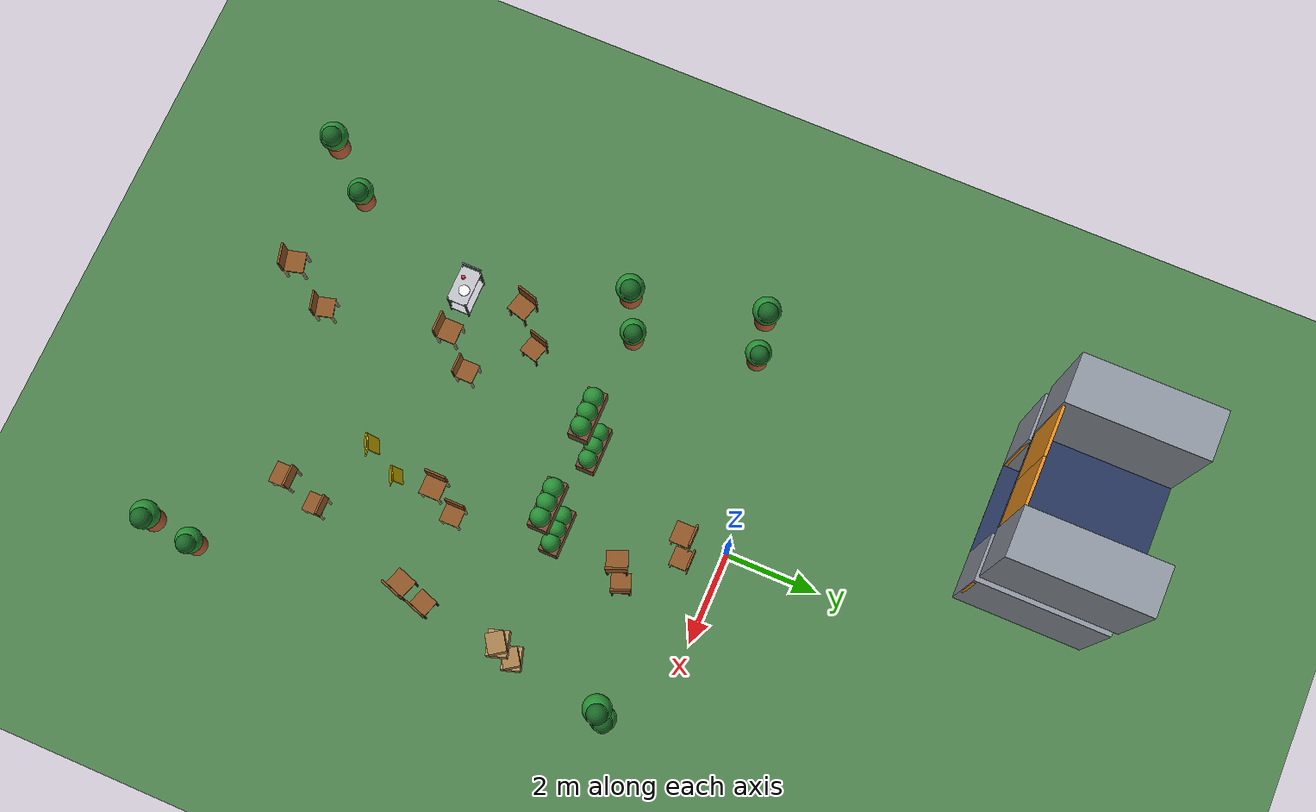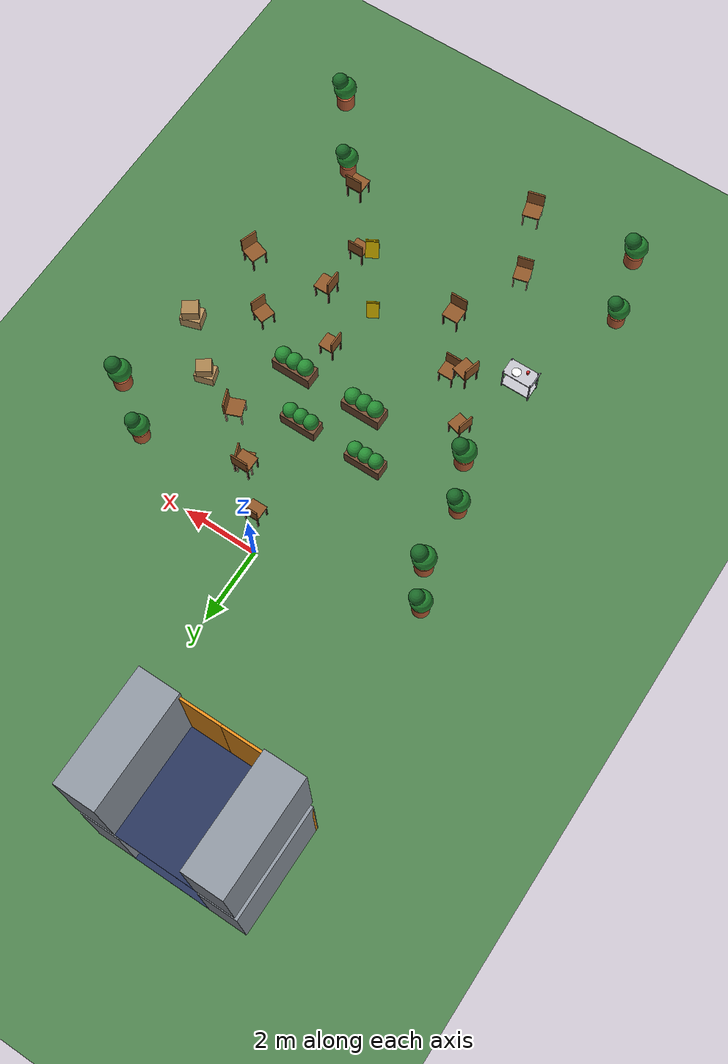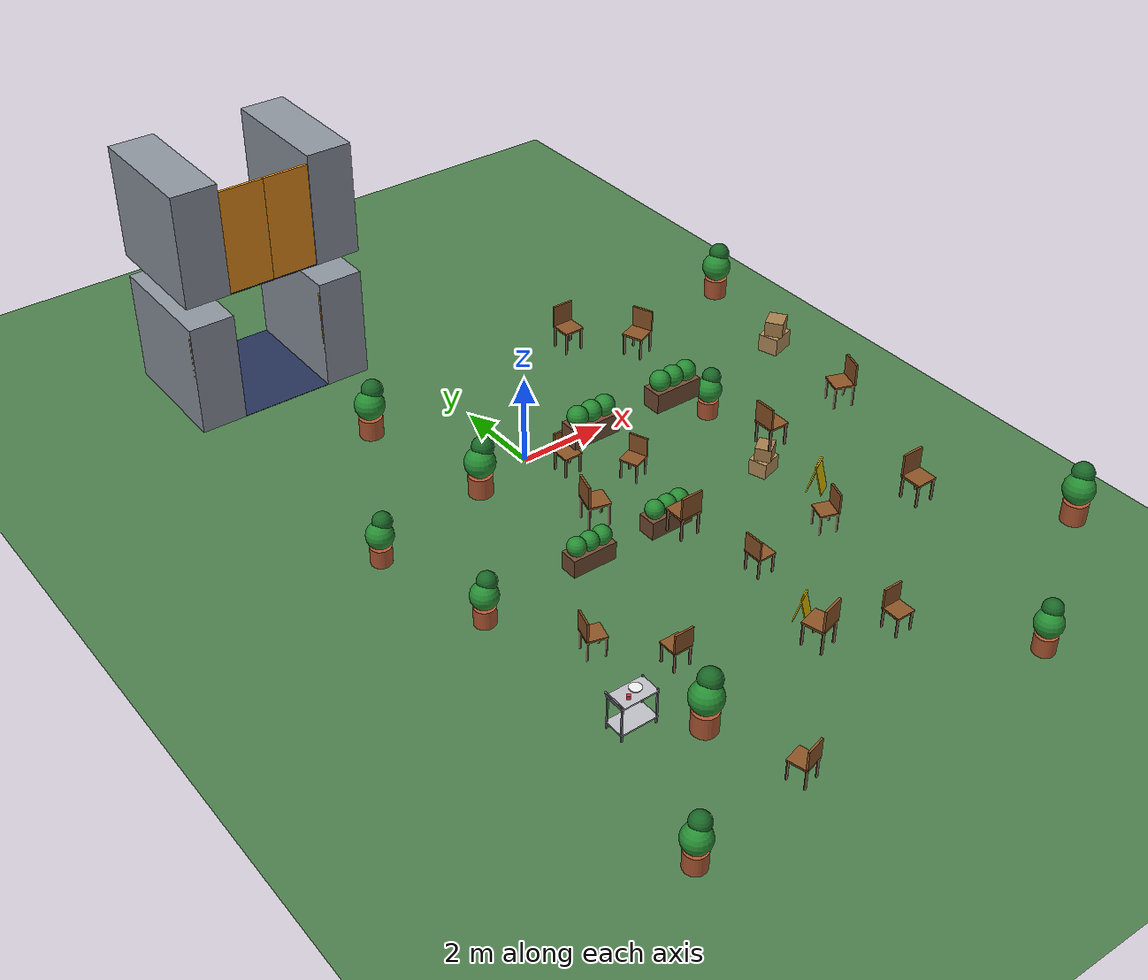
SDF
<sdf version="1.5">
 <world name="default">
  <plugin name="gazebo_ros_state" filename="libgazebo_ros_state.so">
   <ros><namespace>/</namespace></ros>
   <update_rate>1.0</update_rate>
  </plugin>
  <light name="sun" type="directional">
   <pose>0 0 10 0 -0 0</pose>
   <diffuse>0.8 0.8 0.8 1</diffuse>
   <specular>0.2 0.2 0.2 1</specular>
   <attenuation>
    <range>1000</range>
    <constant>0.9</constant>
    <linear>0.01</linear>
    <quadratic>0.001</quadratic>
   </attenuation>
   <direction>0 0.5 -0.9</direction>
  </light>
  <light name="point_light" type="point">
   <pose>0 -0.377195 6.59868 0 -0 0</pose>
   <diffuse>0.784314 0.784314 0.784314 1</diffuse>
   <specular>0.0980392 0.0980392 0.0980392 1</specular>
   <attenuation>
    <range>50</range>
    <constant>0.8</constant>
    <linear>0</linear>
    <quadratic>0.001</quadratic>
   </attenuation>
   <cast_shadows>0</cast_shadows>
   <direction>0 0 -1</direction>
  </light>
  <light name="point_light_f2" type="point">
   <pose>0 -0.377195 9.59868 0 -0 0</pose>
   <diffuse>0.784314 0.784314 0.784314 1</diffuse>
   <specular>0.0980392 0.0980392 0.0980392 1</specular>
   <attenuation>
    <range>50</range>
    <constant>0.8</constant>
    <linear>0</linear>
    <quadratic>0.001</quadratic>
   </attenuation>
   <cast_shadows>0</cast_shadows>
   <direction>0 0 -1</direction>
  </light>
  <model name="ground_plane">
   <static>true</static>
   <link name="link">
    <collision name="collision">
     <geometry><plane><normal>0 0 1</normal><size>100 100</size></plane></geometry>
    </collision>
    <visual name="visual">
     <geometry><plane><normal>0 0 1</normal><size>100 100</size></plane></geometry>
     <material>
      <ambient>0.3 0.5 0.3 1</ambient>
      <diffuse>0.3 0.5 0.3 1</diffuse>
      <specular>0.1 0.1 0.1 1</specular>
     </material>
    </visual>
   </link>
  </model>
  <model name="chair_t1_n">
   <static>true</static>
   <pose>0.5 -0.8 0 0 0 0</pose>
   <link name="link">
    <visual name="seat">
     <pose>0 0 0.45 0 0 0</pose>
     <geometry><box><size>0.42 0.42 0.04</size></box></geometry>
     <material><ambient>0.55 0.33 0.15 1</ambient><diffuse>0.55 0.33 0.15 1</diffuse></material>
    </visual>
    <visual name="back">
     <pose>0 0.19 0.68 0 0 0</pose>
     <geometry><box><size>0.42 0.04 0.42</size></box></geometry>
     <material><ambient>0.55 0.33 0.15 1</ambient><diffuse>0.55 0.33 0.15 1</diffuse></material>
    </visual>
    <visual name="leg0">
     <pose>0.18 0.18 0.215 0 0 0</pose>
     <geometry><box><size>0.035 0.035 0.43</size></box></geometry>
     <material><ambient>0.25 0.15 0.08 1</ambient><diffuse>0.25 0.15 0.08 1</diffuse></material>
    </visual>
    <visual name="leg1">
     <pose>-0.18 0.18 0.215 0 0 0</pose>
     <geometry><box><size>0.035 0.035 0.43</size></box></geometry>
     <material><ambient>0.25 0.15 0.08 1</ambient><diffuse>0.25 0.15 0.08 1</diffuse></material>
    </visual>
    <visual name="leg2">
     <pose>0.18 -0.18 0.215 0 0 0</pose>
     <geometry><box><size>0.035 0.035 0.43</size></box></geometry>
     <material><ambient>0.25 0.15 0.08 1</ambient><diffuse>0.25 0.15 0.08 1</diffuse></material>
    </visual>
    <visual name="leg3">
     <pose>-0.18 -0.18 0.215 0 0 0</pose>
     <geometry><box><size>0.035 0.035 0.43</size></box></geometry>
     <material><ambient>0.25 0.15 0.08 1</ambient><diffuse>0.25 0.15 0.08 1</diffuse></material>
    </visual>
    <collision name="collision">
     <pose>0 0 0.45 0 0 0</pose>
     <geometry><box><size>0.44 0.44 0.9</size></box></geometry>
    </collision>
   </link>
  </model>
  <model name="chair_t1_e">
   <static>true</static>
   <pose>1.45 -1.75 0 0 0 -1.2</pose>
   <link name="link">
    <visual name="seat">
     <pose>0 0 0.45 0 0 0</pose>
     <geometry><box><size>0.42 0.42 0.04</size></box></geometry>
     <material><ambient>0.55 0.33 0.15 1</ambient><diffuse>0.55 0.33 0.15 1</diffuse></material>
    </visual>
    <visual name="back">
     <pose>0 0.19 0.68 0 0 0</pose>
     <geometry><box><size>0.42 0.04 0.42</size></box></geometry>
     <material><ambient>0.55 0.33 0.15 1</ambient><diffuse>0.55 0.33 0.15 1</diffuse></material>
    </visual>
    <visual name="leg0">
     <pose>0.18 0.18 0.215 0 0 0</pose>
     <geometry><box><size>0.035 0.035 0.43</size></box></geometry>
     <material><ambient>0.25 0.15 0.08 1</ambient><diffuse>0.25 0.15 0.08 1</diffuse></material>
    </visual>
    <visual name="leg1">
     <pose>-0.18 0.18 0.215 0 0 0</pose>
     <geometry><box><size>0.035 0.035 0.43</size></box></geometry>
     <material><ambient>0.25 0.15 0.08 1</ambient><diffuse>0.25 0.15 0.08 1</diffuse></material>
    </visual>
    <visual name="leg2">
     <pose>0.18 -0.18 0.215 0 0 0</pose>
     <geometry><box><size>0.035 0.035 0.43</size></box></geometry>
     <material><ambient>0.25 0.15 0.08 1</ambient><diffuse>0.25 0.15 0.08 1</diffuse></material>
    </visual>
    <visual name="leg3">
     <pose>-0.18 -0.18 0.215 0 0 0</pose>
     <geometry><box><size>0.035 0.035 0.43</size></box></geometry>
     <material><ambient>0.25 0.15 0.08 1</ambient><diffuse>0.25 0.15 0.08 1</diffuse></material>
    </visual>
    <collision name="collision">
     <pose>0 0 0.45 0 0 0</pose>
     <geometry><box><size>0.44 0.44 0.9</size></box></geometry>
    </collision>
   </link>
  </model>
  <model name="chair_t2_w">
   <static>true</static>
   <pose>1.5 -5.5 0 0 0 1.5707963267948966</pose>
   <link name="link">
    <visual name="seat">
     <pose>0 0 0.45 0 0 0</pose>
     <geometry><box><size>0.42 0.42 0.04</size></box></geometry>
     <material><ambient>0.55 0.33 0.15 1</ambient><diffuse>0.55 0.33 0.15 1</diffuse></material>
    </visual>
    <visual name="back">
     <pose>0 0.19 0.68 0 0 0</pose>
     <geometry><box><size>0.42 0.04 0.42</size></box></geometry>
     <material><ambient>0.55 0.33 0.15 1</ambient><diffuse>0.55 0.33 0.15 1</diffuse></material>
    </visual>
    <visual name="leg0">
     <pose>0.18 0.18 0.215 0 0 0</pose>
     <geometry><box><size>0.035 0.035 0.43</size></box></geometry>
     <material><ambient>0.25 0.15 0.08 1</ambient><diffuse>0.25 0.15 0.08 1</diffuse></material>
    </visual>
    <visual name="leg1">
     <pose>-0.18 0.18 0.215 0 0 0</pose>
     <geometry><box><size>0.035 0.035 0.43</size></box></geometry>
     <material><ambient>0.25 0.15 0.08 1</ambient><diffuse>0.25 0.15 0.08 1</diffuse></material>
    </visual>
    <visual name="leg2">
     <pose>0.18 -0.18 0.215 0 0 0</pose>
     <geometry><box><size>0.035 0.035 0.43</size></box></geometry>
     <material><ambient>0.25 0.15 0.08 1</ambient><diffuse>0.25 0.15 0.08 1</diffuse></material>
    </visual>
    <visual name="leg3">
     <pose>-0.18 -0.18 0.215 0 0 0</pose>
     <geometry><box><size>0.035 0.035 0.43</size></box></geometry>
     <material><ambient>0.25 0.15 0.08 1</ambient><diffuse>0.25 0.15 0.08 1</diffuse></material>
    </visual>
    <collision name="collision">
     <pose>0 0 0.45 0 0 0</pose>
     <geometry><box><size>0.44 0.44 0.9</size></box></geometry>
    </collision>
   </link>
  </model>
  <model name="chair_t2_e">
   <static>true</static>
   <pose>3.4 -5.3 0 0 0 -1.9</pose>
   <link name="link">
    <visual name="seat">
     <pose>0 0 0.45 0 0 0</pose>
     <geometry><box><size>0.42 0.42 0.04</size></box></geometry>
     <material><ambient>0.55 0.33 0.15 1</ambient><diffuse>0.55 0.33 0.15 1</diffuse></material>
    </visual>
    <visual name="back">
     <pose>0 0.19 0.68 0 0 0</pose>
     <geometry><box><size>0.42 0.04 0.42</size></box></geometry>
     <material><ambient>0.55 0.33 0.15 1</ambient><diffuse>0.55 0.33 0.15 1</diffuse></material>
    </visual>
    <visual name="leg0">
     <pose>0.18 0.18 0.215 0 0 0</pose>
     <geometry><box><size>0.035 0.035 0.43</size></box></geometry>
     <material><ambient>0.25 0.15 0.08 1</ambient><diffuse>0.25 0.15 0.08 1</diffuse></material>
    </visual>
    <visual name="leg1">
     <pose>-0.18 0.18 0.215 0 0 0</pose>
     <geometry><box><size>0.035 0.035 0.43</size></box></geometry>
     <material><ambient>0.25 0.15 0.08 1</ambient><diffuse>0.25 0.15 0.08 1</diffuse></material>
    </visual>
    <visual name="leg2">
     <pose>0.18 -0.18 0.215 0 0 0</pose>
     <geometry><box><size>0.035 0.035 0.43</size></box></geometry>
     <material><ambient>0.25 0.15 0.08 1</ambient><diffuse>0.25 0.15 0.08 1</diffuse></material>
    </visual>
    <visual name="leg3">
     <pose>-0.18 -0.18 0.215 0 0 0</pose>
     <geometry><box><size>0.035 0.035 0.43</size></box></geometry>
     <material><ambient>0.25 0.15 0.08 1</ambient><diffuse>0.25 0.15 0.08 1</diffuse></material>
    </visual>
    <collision name="collision">
     <pose>0 0 0.45 0 0 0</pose>
     <geometry><box><size>0.44 0.44 0.9</size></box></geometry>
    </collision>
   </link>
  </model>
  <model name="chair_t3_w">
   <static>true</static>
   <pose>-2.4 -5.4 0 0 0 1.3</pose>
   <link name="link">
    <visual name="seat">
     <pose>0 0 0.45 0 0 0</pose>
     <geometry><box><size>0.42 0.42 0.04</size></box></geometry>
     <material><ambient>0.55 0.33 0.15 1</ambient><diffuse>0.55 0.33 0.15 1</diffuse></material>
    </visual>
    <visual name="back">
     <pose>0 0.19 0.68 0 0 0</pose>
     <geometry><box><size>0.42 0.04 0.42</size></box></geometry>
     <material><ambient>0.55 0.33 0.15 1</ambient><diffuse>0.55 0.33 0.15 1</diffuse></material>
    </visual>
    <visual name="leg0">
     <pose>0.18 0.18 0.215 0 0 0</pose>
     <geometry><box><size>0.035 0.035 0.43</size></box></geometry>
     <material><ambient>0.25 0.15 0.08 1</ambient><diffuse>0.25 0.15 0.08 1</diffuse></material>
    </visual>
    <visual name="leg1">
     <pose>-0.18 0.18 0.215 0 0 0</pose>
     <geometry><box><size>0.035 0.035 0.43</size></box></geometry>
     <material><ambient>0.25 0.15 0.08 1</ambient><diffuse>0.25 0.15 0.08 1</diffuse></material>
    </visual>
    <visual name="leg2">
     <pose>0.18 -0.18 0.215 0 0 0</pose>
     <geometry><box><size>0.035 0.035 0.43</size></box></geometry>
     <material><ambient>0.25 0.15 0.08 1</ambient><diffuse>0.25 0.15 0.08 1</diffuse></material>
    </visual>
    <visual name="leg3">
     <pose>-0.18 -0.18 0.215 0 0 0</pose>
     <geometry><box><size>0.035 0.035 0.43</size></box></geometry>
     <material><ambient>0.25 0.15 0.08 1</ambient><diffuse>0.25 0.15 0.08 1</diffuse></material>
    </visual>
    <collision name="collision">
     <pose>0 0 0.45 0 0 0</pose>
     <geometry><box><size>0.44 0.44 0.9</size></box></geometry>
    </collision>
   </link>
  </model>
  <model name="chair_t3_s">
   <static>true</static>
   <pose>-1.4 -6.5 0 0 0 3.141592653589793</pose>
   <link name="link">
    <visual name="seat">
     <pose>0 0 0.45 0 0 0</pose>
     <geometry><box><size>0.42 0.42 0.04</size></box></geometry>
     <material><ambient>0.55 0.33 0.15 1</ambient><diffuse>0.55 0.33 0.15 1</diffuse></material>
    </visual>
    <visual name="back">
     <pose>0 0.19 0.68 0 0 0</pose>
     <geometry><box><size>0.42 0.04 0.42</size></box></geometry>
     <material><ambient>0.55 0.33 0.15 1</ambient><diffuse>0.55 0.33 0.15 1</diffuse></material>
    </visual>
    <visual name="leg0">
     <pose>0.18 0.18 0.215 0 0 0</pose>
     <geometry><box><size>0.035 0.035 0.43</size></box></geometry>
     <material><ambient>0.25 0.15 0.08 1</ambient><diffuse>0.25 0.15 0.08 1</diffuse></material>
    </visual>
    <visual name="leg1">
     <pose>-0.18 0.18 0.215 0 0 0</pose>
     <geometry><box><size>0.035 0.035 0.43</size></box></geometry>
     <material><ambient>0.25 0.15 0.08 1</ambient><diffuse>0.25 0.15 0.08 1</diffuse></material>
    </visual>
    <visual name="leg2">
     <pose>0.18 -0.18 0.215 0 0 0</pose>
     <geometry><box><size>0.035 0.035 0.43</size></box></geometry>
     <material><ambient>0.25 0.15 0.08 1</ambient><diffuse>0.25 0.15 0.08 1</diffuse></material>
    </visual>
    <visual name="leg3">
     <pose>-0.18 -0.18 0.215 0 0 0</pose>
     <geometry><box><size>0.035 0.035 0.43</size></box></geometry>
     <material><ambient>0.25 0.15 0.08 1</ambient><diffuse>0.25 0.15 0.08 1</diffuse></material>
    </visual>
    <collision name="collision">
     <pose>0 0 0.45 0 0 0</pose>
     <geometry><box><size>0.44 0.44 0.9</size></box></geometry>
    </collision>
   </link>
  </model>
  <model name="chair_t4_n">
   <static>true</static>
   <pose>2.4 -8.2 0 0 0 0</pose>
   <link name="link">
    <visual name="seat">
     <pose>0 0 0.45 0 0 0</pose>
     <geometry><box><size>0.42 0.42 0.04</size></box></geometry>
     <material><ambient>0.55 0.33 0.15 1</ambient><diffuse>0.55 0.33 0.15 1</diffuse></material>
    </visual>
    <visual name="back">
     <pose>0 0.19 0.68 0 0 0</pose>
     <geometry><box><size>0.42 0.04 0.42</size></box></geometry>
     <material><ambient>0.55 0.33 0.15 1</ambient><diffuse>0.55 0.33 0.15 1</diffuse></material>
    </visual>
    <visual name="leg0">
     <pose>0.18 0.18 0.215 0 0 0</pose>
     <geometry><box><size>0.035 0.035 0.43</size></box></geometry>
     <material><ambient>0.25 0.15 0.08 1</ambient><diffuse>0.25 0.15 0.08 1</diffuse></material>
    </visual>
    <visual name="leg1">
     <pose>-0.18 0.18 0.215 0 0 0</pose>
     <geometry><box><size>0.035 0.035 0.43</size></box></geometry>
     <material><ambient>0.25 0.15 0.08 1</ambient><diffuse>0.25 0.15 0.08 1</diffuse></material>
    </visual>
    <visual name="leg2">
     <pose>0.18 -0.18 0.215 0 0 0</pose>
     <geometry><box><size>0.035 0.035 0.43</size></box></geometry>
     <material><ambient>0.25 0.15 0.08 1</ambient><diffuse>0.25 0.15 0.08 1</diffuse></material>
    </visual>
    <visual name="leg3">
     <pose>-0.18 -0.18 0.215 0 0 0</pose>
     <geometry><box><size>0.035 0.035 0.43</size></box></geometry>
     <material><ambient>0.25 0.15 0.08 1</ambient><diffuse>0.25 0.15 0.08 1</diffuse></material>
    </visual>
    <collision name="collision">
     <pose>0 0 0.45 0 0 0</pose>
     <geometry><box><size>0.44 0.44 0.9</size></box></geometry>
    </collision>
   </link>
  </model>
  <model name="chair_t5_s">
   <static>true</static>
   <pose>-1.5 -9.85 0 0 0 3.4</pose>
   <link name="link">
    <visual name="seat">
     <pose>0 0 0.45 0 0 0</pose>
     <geometry><box><size>0.42 0.42 0.04</size></box></geometry>
     <material><ambient>0.55 0.33 0.15 1</ambient><diffuse>0.55 0.33 0.15 1</diffuse></material>
    </visual>
    <visual name="back">
     <pose>0 0.19 0.68 0 0 0</pose>
     <geometry><box><size>0.42 0.04 0.42</size></box></geometry>
     <material><ambient>0.55 0.33 0.15 1</ambient><diffuse>0.55 0.33 0.15 1</diffuse></material>
    </visual>
    <visual name="leg0">
     <pose>0.18 0.18 0.215 0 0 0</pose>
     <geometry><box><size>0.035 0.035 0.43</size></box></geometry>
     <material><ambient>0.25 0.15 0.08 1</ambient><diffuse>0.25 0.15 0.08 1</diffuse></material>
    </visual>
    <visual name="leg1">
     <pose>-0.18 0.18 0.215 0 0 0</pose>
     <geometry><box><size>0.035 0.035 0.43</size></box></geometry>
     <material><ambient>0.25 0.15 0.08 1</ambient><diffuse>0.25 0.15 0.08 1</diffuse></material>
    </visual>
    <visual name="leg2">
     <pose>0.18 -0.18 0.215 0 0 0</pose>
     <geometry><box><size>0.035 0.035 0.43</size></box></geometry>
     <material><ambient>0.25 0.15 0.08 1</ambient><diffuse>0.25 0.15 0.08 1</diffuse></material>
    </visual>
    <visual name="leg3">
     <pose>-0.18 -0.18 0.215 0 0 0</pose>
     <geometry><box><size>0.035 0.035 0.43</size></box></geometry>
     <material><ambient>0.25 0.15 0.08 1</ambient><diffuse>0.25 0.15 0.08 1</diffuse></material>
    </visual>
    <collision name="collision">
     <pose>0 0 0.45 0 0 0</pose>
     <geometry><box><size>0.44 0.44 0.9</size></box></geometry>
    </collision>
   </link>
  </model>
  <model name="plant1">
   <static>true</static>
   <pose>-4.1 -1.0 0 0 0 0</pose>
   <link name="link">
    <visual name="pot">
     <pose>0 0 0.2 0 0 0</pose>
     <geometry><cylinder><radius>0.22</radius><length>0.4</length></cylinder></geometry>
     <material><ambient>0.7 0.35 0.2 1</ambient><diffuse>0.7 0.35 0.2 1</diffuse></material>
    </visual>
    <visual name="leaf1">
     <pose>0 0 0.65 0 0 0</pose>
     <geometry><sphere><radius>0.28</radius></sphere></geometry>
     <material><ambient>0.15 0.55 0.2 1</ambient><diffuse>0.15 0.55 0.2 1</diffuse></material>
    </visual>
    <visual name="leaf2">
     <pose>0.1 0.05 0.9 0 0 0</pose>
     <geometry><sphere><radius>0.2</radius></sphere></geometry>
     <material><ambient>0.1 0.4 0.15 1</ambient><diffuse>0.1 0.4 0.15 1</diffuse></material>
    </visual>
    <collision name="collision">
     <pose>0 0 0.45 0 0 0</pose>
     <geometry><cylinder><radius>0.27</radius><length>0.9</length></cylinder></geometry>
    </collision>
   </link>
  </model>
  <model name="plant2">
   <static>true</static>
   <pose>4.1 -1.0 0 0 0 0</pose>
   <link name="link">
    <visual name="pot">
     <pose>0 0 0.2 0 0 0</pose>
     <geometry><cylinder><radius>0.22</radius><length>0.4</length></cylinder></geometry>
     <material><ambient>0.7 0.35 0.2 1</ambient><diffuse>0.7 0.35 0.2 1</diffuse></material>
    </visual>
    <visual name="leaf1">
     <pose>0 0 0.65 0 0 0</pose>
     <geometry><sphere><radius>0.28</radius></sphere></geometry>
     <material><ambient>0.15 0.55 0.2 1</ambient><diffuse>0.15 0.55 0.2 1</diffuse></material>
    </visual>
    <visual name="leaf2">
     <pose>0.1 0.05 0.9 0 0 0</pose>
     <geometry><sphere><radius>0.2</radius></sphere></geometry>
     <material><ambient>0.1 0.4 0.15 1</ambient><diffuse>0.1 0.4 0.15 1</diffuse></material>
    </visual>
    <collision name="collision">
     <pose>0 0 0.45 0 0 0</pose>
     <geometry><cylinder><radius>0.27</radius><length>0.9</length></cylinder></geometry>
    </collision>
   </link>
  </model>
  <model name="plant3">
   <static>true</static>
   <pose>4.1 -10.2 0 0 0 0</pose>
   <link name="link">
    <visual name="pot">
     <pose>0 0 0.2 0 0 0</pose>
     <geometry><cylinder><radius>0.22</radius><length>0.4</length></cylinder></geometry>
     <material><ambient>0.7 0.35 0.2 1</ambient><diffuse>0.7 0.35 0.2 1</diffuse></material>
    </visual>
    <visual name="leaf1">
     <pose>0 0 0.65 0 0 0</pose>
     <geometry><sphere><radius>0.28</radius></sphere></geometry>
     <material><ambient>0.15 0.55 0.2 1</ambient><diffuse>0.15 0.55 0.2 1</diffuse></material>
    </visual>
    <visual name="leaf2">
     <pose>0.1 0.05 0.9 0 0 0</pose>
     <geometry><sphere><radius>0.2</radius></sphere></geometry>
     <material><ambient>0.1 0.4 0.15 1</ambient><diffuse>0.1 0.4 0.15 1</diffuse></material>
    </visual>
    <collision name="collision">
     <pose>0 0 0.45 0 0 0</pose>
     <geometry><cylinder><radius>0.27</radius><length>0.9</length></cylinder></geometry>
    </collision>
   </link>
  </model>
  <model name="plant4">
   <static>true</static>
   <pose>-4.1 -10.2 0 0 0 0</pose>
   <link name="link">
    <visual name="pot">
     <pose>0 0 0.2 0 0 0</pose>
     <geometry><cylinder><radius>0.22</radius><length>0.4</length></cylinder></geometry>
     <material><ambient>0.7 0.35 0.2 1</ambient><diffuse>0.7 0.35 0.2 1</diffuse></material>
    </visual>
    <visual name="leaf1">
     <pose>0 0 0.65 0 0 0</pose>
     <geometry><sphere><radius>0.28</radius></sphere></geometry>
     <material><ambient>0.15 0.55 0.2 1</ambient><diffuse>0.15 0.55 0.2 1</diffuse></material>
    </visual>
    <visual name="leaf2">
     <pose>0.1 0.05 0.9 0 0 0</pose>
     <geometry><sphere><radius>0.2</radius></sphere></geometry>
     <material><ambient>0.1 0.4 0.15 1</ambient><diffuse>0.1 0.4 0.15 1</diffuse></material>
    </visual>
    <collision name="collision">
     <pose>0 0 0.45 0 0 0</pose>
     <geometry><cylinder><radius>0.27</radius><length>0.9</length></cylinder></geometry>
    </collision>
   </link>
  </model>
  <model name="plant5">
   <static>true</static>
   <pose>-3.5 -3.6 0 0 0 0</pose>
   <link name="link">
    <visual name="pot">
     <pose>0 0 0.2 0 0 0</pose>
     <geometry><cylinder><radius>0.22</radius><length>0.4</length></cylinder></geometry>
     <material><ambient>0.7 0.35 0.2 1</ambient><diffuse>0.7 0.35 0.2 1</diffuse></material>
    </visual>
    <visual name="leaf1">
     <pose>0 0 0.65 0 0 0</pose>
     <geometry><sphere><radius>0.28</radius></sphere></geometry>
     <material><ambient>0.15 0.55 0.2 1</ambient><diffuse>0.15 0.55 0.2 1</diffuse></material>
    </visual>
    <visual name="leaf2">
     <pose>0.1 0.05 0.9 0 0 0</pose>
     <geometry><sphere><radius>0.2</radius></sphere></geometry>
     <material><ambient>0.1 0.4 0.15 1</ambient><diffuse>0.1 0.4 0.15 1</diffuse></material>
    </visual>
    <collision name="collision">
     <pose>0 0 0.45 0 0 0</pose>
     <geometry><cylinder><radius>0.27</radius><length>0.9</length></cylinder></geometry>
    </collision>
   </link>
  </model>
  <model name="planter_left">
   <static>true</static>
   <pose>-0.95 -3.4 0 0 0 0</pose>
   <link name="link">
    <visual name="box">
     <pose>0 0 0.2 0 0 0</pose>
     <geometry><box><size>1.0 0.4 0.4</size></box></geometry>
     <material><ambient>0.45 0.3 0.2 1</ambient><diffuse>0.45 0.3 0.2 1</diffuse></material>
    </visual>
    <visual name="bush0">
     <pose>-0.3 0 0.55 0 0 0</pose>
     <geometry><sphere><radius>0.2</radius></sphere></geometry>
     <material><ambient>0.15 0.55 0.2 1</ambient><diffuse>0.15 0.55 0.2 1</diffuse></material>
    </visual>
    <visual name="bush1">
     <pose>0 0 0.55 0 0 0</pose>
     <geometry><sphere><radius>0.2</radius></sphere></geometry>
     <material><ambient>0.15 0.55 0.2 1</ambient><diffuse>0.15 0.55 0.2 1</diffuse></material>
    </visual>
    <visual name="bush2">
     <pose>0.3 0 0.55 0 0 0</pose>
     <geometry><sphere><radius>0.2</radius></sphere></geometry>
     <material><ambient>0.15 0.55 0.2 1</ambient><diffuse>0.15 0.55 0.2 1</diffuse></material>
    </visual>
    <collision name="collision">
     <pose>0 0 0.4 0 0 0</pose>
     <geometry><box><size>1.0 0.4 0.8</size></box></geometry>
    </collision>
   </link>
  </model>
  <model name="planter_right">
   <static>true</static>
   <pose>0.95 -3.4 0 0 0 0</pose>
   <link name="link">
    <visual name="box">
     <pose>0 0 0.2 0 0 0</pose>
     <geometry><box><size>1.0 0.4 0.4</size></box></geometry>
     <material><ambient>0.45 0.3 0.2 1</ambient><diffuse>0.45 0.3 0.2 1</diffuse></material>
    </visual>
    <visual name="bush0">
     <pose>-0.3 0 0.55 0 0 0</pose>
     <geometry><sphere><radius>0.2</radius></sphere></geometry>
     <material><ambient>0.15 0.55 0.2 1</ambient><diffuse>0.15 0.55 0.2 1</diffuse></material>
    </visual>
    <visual name="bush1">
     <pose>0 0 0.55 0 0 0</pose>
     <geometry><sphere><radius>0.2</radius></sphere></geometry>
     <material><ambient>0.15 0.55 0.2 1</ambient><diffuse>0.15 0.55 0.2 1</diffuse></material>
    </visual>
    <visual name="bush2">
     <pose>0.3 0 0.55 0 0 0</pose>
     <geometry><sphere><radius>0.2</radius></sphere></geometry>
     <material><ambient>0.15 0.55 0.2 1</ambient><diffuse>0.15 0.55 0.2 1</diffuse></material>
    </visual>
    <collision name="collision">
     <pose>0 0 0.4 0 0 0</pose>
     <geometry><box><size>1.0 0.4 0.8</size></box></geometry>
    </collision>
   </link>
  </model>
  <model name="delivery_boxes">
   <static>true</static>
   <pose>3.7 -3.2 0 0 0 0.3</pose>
   <link name="link">
    <visual name="b1">
     <pose>0 0 0.175 0 0 0</pose>
     <geometry><box><size>0.5 0.4 0.35</size></box></geometry>
     <material><ambient>0.7 0.55 0.35 1</ambient><diffuse>0.7 0.55 0.35 1</diffuse></material>
    </visual>
    <visual name="b2">
     <pose>0.02 0 0.5 0 0 0.3</pose>
     <geometry><box><size>0.4 0.35 0.3</size></box></geometry>
     <material><ambient>0.65 0.5 0.3 1</ambient><diffuse>0.65 0.5 0.3 1</diffuse></material>
    </visual>
    <collision name="collision">
     <pose>0 0 0.325 0 0 0</pose>
     <geometry><box><size>0.52 0.42 0.65</size></box></geometry>
    </collision>
   </link>
  </model>
  <model name="wet_floor_sign">
   <static>true</static>
   <pose>1.2 -7.0 0 0 0 0.5</pose>
   <link name="link">
    <visual name="p1">
     <pose>0 0.06 0.3 0.25 0 0</pose>
     <geometry><box><size>0.32 0.02 0.6</size></box></geometry>
     <material><ambient>1 0.85 0 1</ambient><diffuse>1 0.85 0 1</diffuse></material>
    </visual>
    <visual name="p2">
     <pose>0 -0.06 0.3 -0.25 0 0</pose>
     <geometry><box><size>0.32 0.02 0.6</size></box></geometry>
     <material><ambient>1 0.85 0 1</ambient><diffuse>1 0.85 0 1</diffuse></material>
    </visual>
    <collision name="collision">
     <pose>0 0 0.3 0 0 0</pose>
     <geometry><box><size>0.34 0.26 0.6</size></box></geometry>
    </collision>
   </link>
  </model>
  <model name="dynamic_box">
   <pose>-3.0 -7.25 0.02 0 0 0</pose>
   <link name="link">
    <gravity>0</gravity>
    <inertial>
     <mass>8</mass>
     <inertia><ixx>0.5</ixx><iyy>0.5</iyy><izz>0.5</izz><ixy>0</ixy><ixz>0</ixz><iyz>0</iyz></inertia>
    </inertial>
    <visual name="shelf_low">
     <pose>0 0 0.15 0 0 0</pose>
     <geometry><box><size>0.8 0.45 0.03</size></box></geometry>
     <material><ambient>0.75 0.75 0.78 1</ambient><diffuse>0.75 0.75 0.78 1</diffuse></material>
    </visual>
    <visual name="shelf_top">
     <pose>0 0 0.75 0 0 0</pose>
     <geometry><box><size>0.8 0.45 0.03</size></box></geometry>
     <material><ambient>0.75 0.75 0.78 1</ambient><diffuse>0.75 0.75 0.78 1</diffuse></material>
    </visual>
    <visual name="post0">
     <pose>0.38 0.2 0.4 0 0 0</pose>
     <geometry><box><size>0.03 0.03 0.8</size></box></geometry>
     <material><ambient>0.5 0.5 0.55 1</ambient><diffuse>0.5 0.5 0.55 1</diffuse></material>
    </visual>
    <visual name="post1">
     <pose>-0.38 0.2 0.4 0 0 0</pose>
     <geometry><box><size>0.03 0.03 0.8</size></box></geometry>
     <material><ambient>0.5 0.5 0.55 1</ambient><diffuse>0.5 0.5 0.55 1</diffuse></material>
    </visual>
    <visual name="post2">
     <pose>0.38 -0.2 0.4 0 0 0</pose>
     <geometry><box><size>0.03 0.03 0.8</size></box></geometry>
     <material><ambient>0.5 0.5 0.55 1</ambient><diffuse>0.5 0.5 0.55 1</diffuse></material>
    </visual>
    <visual name="post3">
     <pose>-0.38 -0.2 0.4 0 0 0</pose>
     <geometry><box><size>0.03 0.03 0.8</size></box></geometry>
     <material><ambient>0.5 0.5 0.55 1</ambient><diffuse>0.5 0.5 0.55 1</diffuse></material>
    </visual>
    <visual name="handle">
     <pose>-0.42 0 0.85 0 0 0</pose>
     <geometry><box><size>0.03 0.45 0.03</size></box></geometry>
     <material><ambient>0.5 0.5 0.55 1</ambient><diffuse>0.5 0.5 0.55 1</diffuse></material>
    </visual>
    <visual name="plate">
     <pose>0.1 0.05 0.79 0 0 0</pose>
     <geometry><cylinder><radius>0.12</radius><length>0.02</length></cylinder></geometry>
     <material><ambient>0.95 0.95 0.95 1</ambient><diffuse>0.95 0.95 0.95 1</diffuse></material>
    </visual>
    <visual name="cup">
     <pose>-0.15 -0.08 0.82 0 0 0</pose>
     <geometry><cylinder><radius>0.04</radius><length>0.08</length></cylinder></geometry>
     <material><ambient>0.9 0.2 0.2 1</ambient><diffuse>0.9 0.2 0.2 1</diffuse></material>
    </visual>
    <collision name="collision">
     <pose>0 0 0.45 0 0 0</pose>
     <geometry><box><size>0.82 0.47 0.9</size></box></geometry>
    </collision>
   </link>
   <plugin name="dyn_planar_move" filename="libgazebo_ros_planar_move.so">
    <ros><namespace>dyn_box</namespace></ros>
    <command_topic>cmd_vel</command_topic>
    <publish_odom>false</publish_odom>
    <publish_odom_tf>false</publish_odom_tf>
   </plugin>
  </model>
  <model name="chair_t1_n_f2">
   <static>true</static>
   <pose>0.5 -0.8 3.0 0 0 0</pose>
   <link name="link">
    <visual name="seat">
     <pose>0 0 0.45 0 0 0</pose>
     <geometry><box><size>0.42 0.42 0.04</size></box></geometry>
     <material><ambient>0.55 0.33 0.15 1</ambient><diffuse>0.55 0.33 0.15 1</diffuse></material>
    </visual>
    <visual name="back">
     <pose>0 0.19 0.68 0 0 0</pose>
     <geometry><box><size>0.42 0.04 0.42</size></box></geometry>
     <material><ambient>0.55 0.33 0.15 1</ambient><diffuse>0.55 0.33 0.15 1</diffuse></material>
    </visual>
    <visual name="leg0">
     <pose>0.18 0.18 0.215 0 0 0</pose>
     <geometry><box><size>0.035 0.035 0.43</size></box></geometry>
     <material><ambient>0.25 0.15 0.08 1</ambient><diffuse>0.25 0.15 0.08 1</diffuse></material>
    </visual>
    <visual name="leg1">
     <pose>-0.18 0.18 0.215 0 0 0</pose>
     <geometry><box><size>0.035 0.035 0.43</size></box></geometry>
     <material><ambient>0.25 0.15 0.08 1</ambient><diffuse>0.25 0.15 0.08 1</diffuse></material>
    </visual>
    <visual name="leg2">
     <pose>0.18 -0.18 0.215 0 0 0</pose>
     <geometry><box><size>0.035 0.035 0.43</size></box></geometry>
     <material><ambient>0.25 0.15 0.08 1</ambient><diffuse>0.25 0.15 0.08 1</diffuse></material>
    </visual>
    <visual name="leg3">
     <pose>-0.18 -0.18 0.215 0 0 0</pose>
     <geometry><box><size>0.035 0.035 0.43</size></box></geometry>
     <material><ambient>0.25 0.15 0.08 1</ambient><diffuse>0.25 0.15 0.08 1</diffuse></material>
    </visual>
    <collision name="collision">
     <pose>0 0 0.45 0 0 0</pose>
     <geometry><box><size>0.44 0.44 0.9</size></box></geometry>
    </collision>
   </link>
  </model>
  <model name="chair_t1_e_f2">
   <static>true</static>
   <pose>1.45 -1.75 3.0 0 0 -1.2</pose>
   <link name="link">
    <visual name="seat">
     <pose>0 0 0.45 0 0 0</pose>
     <geometry><box><size>0.42 0.42 0.04</size></box></geometry>
     <material><ambient>0.55 0.33 0.15 1</ambient><diffuse>0.55 0.33 0.15 1</diffuse></material>
    </visual>
    <visual name="back">
     <pose>0 0.19 0.68 0 0 0</pose>
     <geometry><box><size>0.42 0.04 0.42</size></box></geometry>
     <material><ambient>0.55 0.33 0.15 1</ambient><diffuse>0.55 0.33 0.15 1</diffuse></material>
    </visual>
    <visual name="leg0">
     <pose>0.18 0.18 0.215 0 0 0</pose>
     <geometry><box><size>0.035 0.035 0.43</size></box></geometry>
     <material><ambient>0.25 0.15 0.08 1</ambient><diffuse>0.25 0.15 0.08 1</diffuse></material>
    </visual>
    <visual name="leg1">
     <pose>-0.18 0.18 0.215 0 0 0</pose>
     <geometry><box><size>0.035 0.035 0.43</size></box></geometry>
     <material><ambient>0.25 0.15 0.08 1</ambient><diffuse>0.25 0.15 0.08 1</diffuse></material>
    </visual>
    <visual name="leg2">
     <pose>0.18 -0.18 0.215 0 0 0</pose>
     <geometry><box><size>0.035 0.035 0.43</size></box></geometry>
     <material><ambient>0.25 0.15 0.08 1</ambient><diffuse>0.25 0.15 0.08 1</diffuse></material>
    </visual>
    <visual name="leg3">
     <pose>-0.18 -0.18 0.215 0 0 0</pose>
     <geometry><box><size>0.035 0.035 0.43</size></box></geometry>
     <material><ambient>0.25 0.15 0.08 1</ambient><diffuse>0.25 0.15 0.08 1</diffuse></material>
    </visual>
    <collision name="collision">
     <pose>0 0 0.45 0 0 0</pose>
     <geometry><box><size>0.44 0.44 0.9</size></box></geometry>
    </collision>
   </link>
  </model>
  <model name="chair_t2_w_f2">
   <static>true</static>
   <pose>1.5 -5.5 3.0 0 0 1.5707963267948966</pose>
   <link name="link">
    <visual name="seat">
     <pose>0 0 0.45 0 0 0</pose>
     <geometry><box><size>0.42 0.42 0.04</size></box></geometry>
     <material><ambient>0.55 0.33 0.15 1</ambient><diffuse>0.55 0.33 0.15 1</diffuse></material>
    </visual>
    <visual name="back">
     <pose>0 0.19 0.68 0 0 0</pose>
     <geometry><box><size>0.42 0.04 0.42</size></box></geometry>
     <material><ambient>0.55 0.33 0.15 1</ambient><diffuse>0.55 0.33 0.15 1</diffuse></material>
    </visual>
    <visual name="leg0">
     <pose>0.18 0.18 0.215 0 0 0</pose>
     <geometry><box><size>0.035 0.035 0.43</size></box></geometry>
     <material><ambient>0.25 0.15 0.08 1</ambient><diffuse>0.25 0.15 0.08 1</diffuse></material>
    </visual>
    <visual name="leg1">
     <pose>-0.18 0.18 0.215 0 0 0</pose>
     <geometry><box><size>0.035 0.035 0.43</size></box></geometry>
     <material><ambient>0.25 0.15 0.08 1</ambient><diffuse>0.25 0.15 0.08 1</diffuse></material>
    </visual>
    <visual name="leg2">
     <pose>0.18 -0.18 0.215 0 0 0</pose>
     <geometry><box><size>0.035 0.035 0.43</size></box></geometry>
     <material><ambient>0.25 0.15 0.08 1</ambient><diffuse>0.25 0.15 0.08 1</diffuse></material>
    </visual>
    <visual name="leg3">
     <pose>-0.18 -0.18 0.215 0 0 0</pose>
     <geometry><box><size>0.035 0.035 0.43</size></box></geometry>
     <material><ambient>0.25 0.15 0.08 1</ambient><diffuse>0.25 0.15 0.08 1</diffuse></material>
    </visual>
    <collision name="collision">
     <pose>0 0 0.45 0 0 0</pose>
     <geometry><box><size>0.44 0.44 0.9</size></box></geometry>
    </collision>
   </link>
  </model>
  <model name="chair_t2_e_f2">
   <static>true</static>
   <pose>3.4 -5.3 3.0 0 0 -1.9</pose>
   <link name="link">
    <visual name="seat">
     <pose>0 0 0.45 0 0 0</pose>
     <geometry><box><size>0.42 0.42 0.04</size></box></geometry>
     <material><ambient>0.55 0.33 0.15 1</ambient><diffuse>0.55 0.33 0.15 1</diffuse></material>
    </visual>
    <visual name="back">
     <pose>0 0.19 0.68 0 0 0</pose>
     <geometry><box><size>0.42 0.04 0.42</size></box></geometry>
     <material><ambient>0.55 0.33 0.15 1</ambient><diffuse>0.55 0.33 0.15 1</diffuse></material>
    </visual>
    <visual name="leg0">
     <pose>0.18 0.18 0.215 0 0 0</pose>
     <geometry><box><size>0.035 0.035 0.43</size></box></geometry>
     <material><ambient>0.25 0.15 0.08 1</ambient><diffuse>0.25 0.15 0.08 1</diffuse></material>
    </visual>
    <visual name="leg1">
     <pose>-0.18 0.18 0.215 0 0 0</pose>
     <geometry><box><size>0.035 0.035 0.43</size></box></geometry>
     <material><ambient>0.25 0.15 0.08 1</ambient><diffuse>0.25 0.15 0.08 1</diffuse></material>
    </visual>
    <visual name="leg2">
     <pose>0.18 -0.18 0.215 0 0 0</pose>
     <geometry><box><size>0.035 0.035 0.43</size></box></geometry>
     <material><ambient>0.25 0.15 0.08 1</ambient><diffuse>0.25 0.15 0.08 1</diffuse></material>
    </visual>
    <visual name="leg3">
     <pose>-0.18 -0.18 0.215 0 0 0</pose>
     <geometry><box><size>0.035 0.035 0.43</size></box></geometry>
     <material><ambient>0.25 0.15 0.08 1</ambient><diffuse>0.25 0.15 0.08 1</diffuse></material>
    </visual>
    <collision name="collision">
     <pose>0 0 0.45 0 0 0</pose>
     <geometry><box><size>0.44 0.44 0.9</size></box></geometry>
    </collision>
   </link>
  </model>
  <model name="chair_t3_w_f2">
   <static>true</static>
   <pose>-2.4 -5.4 3.0 0 0 1.3</pose>
   <link name="link">
    <visual name="seat">
     <pose>0 0 0.45 0 0 0</pose>
     <geometry><box><size>0.42 0.42 0.04</size></box></geometry>
     <material><ambient>0.55 0.33 0.15 1</ambient><diffuse>0.55 0.33 0.15 1</diffuse></material>
    </visual>
    <visual name="back">
     <pose>0 0.19 0.68 0 0 0</pose>
     <geometry><box><size>0.42 0.04 0.42</size></box></geometry>
     <material><ambient>0.55 0.33 0.15 1</ambient><diffuse>0.55 0.33 0.15 1</diffuse></material>
    </visual>
    <visual name="leg0">
     <pose>0.18 0.18 0.215 0 0 0</pose>
     <geometry><box><size>0.035 0.035 0.43</size></box></geometry>
     <material><ambient>0.25 0.15 0.08 1</ambient><diffuse>0.25 0.15 0.08 1</diffuse></material>
    </visual>
    <visual name="leg1">
     <pose>-0.18 0.18 0.215 0 0 0</pose>
     <geometry><box><size>0.035 0.035 0.43</size></box></geometry>
     <material><ambient>0.25 0.15 0.08 1</ambient><diffuse>0.25 0.15 0.08 1</diffuse></material>
    </visual>
    <visual name="leg2">
     <pose>0.18 -0.18 0.215 0 0 0</pose>
     <geometry><box><size>0.035 0.035 0.43</size></box></geometry>
     <material><ambient>0.25 0.15 0.08 1</ambient><diffuse>0.25 0.15 0.08 1</diffuse></material>
    </visual>
    <visual name="leg3">
     <pose>-0.18 -0.18 0.215 0 0 0</pose>
     <geometry><box><size>0.035 0.035 0.43</size></box></geometry>
     <material><ambient>0.25 0.15 0.08 1</ambient><diffuse>0.25 0.15 0.08 1</diffuse></material>
    </visual>
    <collision name="collision">
     <pose>0 0 0.45 0 0 0</pose>
     <geometry><box><size>0.44 0.44 0.9</size></box></geometry>
    </collision>
   </link>
  </model>
  <model name="chair_t3_s_f2">
   <static>true</static>
   <pose>-1.4 -6.5 3.0 0 0 3.141592653589793</pose>
   <link name="link">
    <visual name="seat">
     <pose>0 0 0.45 0 0 0</pose>
     <geometry><box><size>0.42 0.42 0.04</size></box></geometry>
     <material><ambient>0.55 0.33 0.15 1</ambient><diffuse>0.55 0.33 0.15 1</diffuse></material>
    </visual>
    <visual name="back">
     <pose>0 0.19 0.68 0 0 0</pose>
     <geometry><box><size>0.42 0.04 0.42</size></box></geometry>
     <material><ambient>0.55 0.33 0.15 1</ambient><diffuse>0.55 0.33 0.15 1</diffuse></material>
    </visual>
    <visual name="leg0">
     <pose>0.18 0.18 0.215 0 0 0</pose>
     <geometry><box><size>0.035 0.035 0.43</size></box></geometry>
     <material><ambient>0.25 0.15 0.08 1</ambient><diffuse>0.25 0.15 0.08 1</diffuse></material>
    </visual>
    <visual name="leg1">
     <pose>-0.18 0.18 0.215 0 0 0</pose>
     <geometry><box><size>0.035 0.035 0.43</size></box></geometry>
     <material><ambient>0.25 0.15 0.08 1</ambient><diffuse>0.25 0.15 0.08 1</diffuse></material>
    </visual>
    <visual name="leg2">
     <pose>0.18 -0.18 0.215 0 0 0</pose>
     <geometry><box><size>0.035 0.035 0.43</size></box></geometry>
     <material><ambient>0.25 0.15 0.08 1</ambient><diffuse>0.25 0.15 0.08 1</diffuse></material>
    </visual>
    <visual name="leg3">
     <pose>-0.18 -0.18 0.215 0 0 0</pose>
     <geometry><box><size>0.035 0.035 0.43</size></box></geometry>
     <material><ambient>0.25 0.15 0.08 1</ambient><diffuse>0.25 0.15 0.08 1</diffuse></material>
    </visual>
    <collision name="collision">
     <pose>0 0 0.45 0 0 0</pose>
     <geometry><box><size>0.44 0.44 0.9</size></box></geometry>
    </collision>
   </link>
  </model>
  <model name="chair_t4_n_f2">
   <static>true</static>
   <pose>2.4 -8.2 3.0 0 0 0</pose>
   <link name="link">
    <visual name="seat">
     <pose>0 0 0.45 0 0 0</pose>
     <geometry><box><size>0.42 0.42 0.04</size></box></geometry>
     <material><ambient>0.55 0.33 0.15 1</ambient><diffuse>0.55 0.33 0.15 1</diffuse></material>
    </visual>
    <visual name="back">
     <pose>0 0.19 0.68 0 0 0</pose>
     <geometry><box><size>0.42 0.04 0.42</size></box></geometry>
     <material><ambient>0.55 0.33 0.15 1</ambient><diffuse>0.55 0.33 0.15 1</diffuse></material>
    </visual>
    <visual name="leg0">
     <pose>0.18 0.18 0.215 0 0 0</pose>
     <geometry><box><size>0.035 0.035 0.43</size></box></geometry>
     <material><ambient>0.25 0.15 0.08 1</ambient><diffuse>0.25 0.15 0.08 1</diffuse></material>
    </visual>
    <visual name="leg1">
     <pose>-0.18 0.18 0.215 0 0 0</pose>
     <geometry><box><size>0.035 0.035 0.43</size></box></geometry>
     <material><ambient>0.25 0.15 0.08 1</ambient><diffuse>0.25 0.15 0.08 1</diffuse></material>
    </visual>
    <visual name="leg2">
     <pose>0.18 -0.18 0.215 0 0 0</pose>
     <geometry><box><size>0.035 0.035 0.43</size></box></geometry>
     <material><ambient>0.25 0.15 0.08 1</ambient><diffuse>0.25 0.15 0.08 1</diffuse></material>
    </visual>
    <visual name="leg3">
     <pose>-0.18 -0.18 0.215 0 0 0</pose>
     <geometry><box><size>0.035 0.035 0.43</size></box></geometry>
     <material><ambient>0.25 0.15 0.08 1</ambient><diffuse>0.25 0.15 0.08 1</diffuse></material>
    </visual>
    <collision name="collision">
     <pose>0 0 0.45 0 0 0</pose>
     <geometry><box><size>0.44 0.44 0.9</size></box></geometry>
    </collision>
   </link>
  </model>
  <model name="chair_t5_s_f2">
   <static>true</static>
   <pose>-1.5 -9.85 3.0 0 0 3.4</pose>
   <link name="link">
    <visual name="seat">
     <pose>0 0 0.45 0 0 0</pose>
     <geometry><box><size>0.42 0.42 0.04</size></box></geometry>
     <material><ambient>0.55 0.33 0.15 1</ambient><diffuse>0.55 0.33 0.15 1</diffuse></material>
    </visual>
    <visual name="back">
     <pose>0 0.19 0.68 0 0 0</pose>
     <geometry><box><size>0.42 0.04 0.42</size></box></geometry>
     <material><ambient>0.55 0.33 0.15 1</ambient><diffuse>0.55 0.33 0.15 1</diffuse></material>
    </visual>
    <visual name="leg0">
     <pose>0.18 0.18 0.215 0 0 0</pose>
     <geometry><box><size>0.035 0.035 0.43</size></box></geometry>
     <material><ambient>0.25 0.15 0.08 1</ambient><diffuse>0.25 0.15 0.08 1</diffuse></material>
    </visual>
    <visual name="leg1">
     <pose>-0.18 0.18 0.215 0 0 0</pose>
     <geometry><box><size>0.035 0.035 0.43</size></box></geometry>
     <material><ambient>0.25 0.15 0.08 1</ambient><diffuse>0.25 0.15 0.08 1</diffuse></material>
    </visual>
    <visual name="leg2">
     <pose>0.18 -0.18 0.215 0 0 0</pose>
     <geometry><box><size>0.035 0.035 0.43</size></box></geometry>
     <material><ambient>0.25 0.15 0.08 1</ambient><diffuse>0.25 0.15 0.08 1</diffuse></material>
    </visual>
    <visual name="leg3">
     <pose>-0.18 -0.18 0.215 0 0 0</pose>
     <geometry><box><size>0.035 0.035 0.43</size></box></geometry>
     <material><ambient>0.25 0.15 0.08 1</ambient><diffuse>0.25 0.15 0.08 1</diffuse></material>
    </visual>
    <collision name="collision">
     <pose>0 0 0.45 0 0 0</pose>
     <geometry><box><size>0.44 0.44 0.9</size></box></geometry>
    </collision>
   </link>
  </model>
  <model name="plant1_f2">
   <static>true</static>
   <pose>-4.1 -1.0 3.0 0 0 0</pose>
   <link name="link">
    <visual name="pot">
     <pose>0 0 0.2 0 0 0</pose>
     <geometry><cylinder><radius>0.22</radius><length>0.4</length></cylinder></geometry>
     <material><ambient>0.7 0.35 0.2 1</ambient><diffuse>0.7 0.35 0.2 1</diffuse></material>
    </visual>
    <visual name="leaf1">
     <pose>0 0 0.65 0 0 0</pose>
     <geometry><sphere><radius>0.28</radius></sphere></geometry>
     <material><ambient>0.15 0.55 0.2 1</ambient><diffuse>0.15 0.55 0.2 1</diffuse></material>
    </visual>
    <visual name="leaf2">
     <pose>0.1 0.05 0.9 0 0 0</pose>
     <geometry><sphere><radius>0.2</radius></sphere></geometry>
     <material><ambient>0.1 0.4 0.15 1</ambient><diffuse>0.1 0.4 0.15 1</diffuse></material>
    </visual>
    <collision name="collision">
     <pose>0 0 0.45 0 0 0</pose>
     <geometry><cylinder><radius>0.27</radius><length>0.9</length></cylinder></geometry>
    </collision>
   </link>
  </model>
  <model name="plant2_f2">
   <static>true</static>
   <pose>4.1 -1.0 3.0 0 0 0</pose>
   <link name="link">
    <visual name="pot">
     <pose>0 0 0.2 0 0 0</pose>
     <geometry><cylinder><radius>0.22</radius><length>0.4</length></cylinder></geometry>
     <material><ambient>0.7 0.35 0.2 1</ambient><diffuse>0.7 0.35 0.2 1</diffuse></material>
    </visual>
    <visual name="leaf1">
     <pose>0 0 0.65 0 0 0</pose>
     <geometry><sphere><radius>0.28</radius></sphere></geometry>
     <material><ambient>0.15 0.55 0.2 1</ambient><diffuse>0.15 0.55 0.2 1</diffuse></material>
    </visual>
    <visual name="leaf2">
     <pose>0.1 0.05 0.9 0 0 0</pose>
     <geometry><sphere><radius>0.2</radius></sphere></geometry>
     <material><ambient>0.1 0.4 0.15 1</ambient><diffuse>0.1 0.4 0.15 1</diffuse></material>
    </visual>
    <collision name="collision">
     <pose>0 0 0.45 0 0 0</pose>
     <geometry><cylinder><radius>0.27</radius><length>0.9</length></cylinder></geometry>
    </collision>
   </link>
  </model>
  <model name="plant3_f2">
   <static>true</static>
   <pose>4.1 -10.2 3.0 0 0 0</pose>
   <link name="link">
    <visual name="pot">
     <pose>0 0 0.2 0 0 0</pose>
     <geometry><cylinder><radius>0.22</radius><length>0.4</length></cylinder></geometry>
     <material><ambient>0.7 0.35 0.2 1</ambient><diffuse>0.7 0.35 0.2 1</diffuse></material>
    </visual>
    <visual name="leaf1">
     <pose>0 0 0.65 0 0 0</pose>
     <geometry><sphere><radius>0.28</radius></sphere></geometry>
     <material><ambient>0.15 0.55 0.2 1</ambient><diffuse>0.15 0.55 0.2 1</diffuse></material>
    </visual>
    <visual name="leaf2">
     <pose>0.1 0.05 0.9 0 0 0</pose>
     <geometry><sphere><radius>0.2</radius></sphere></geometry>
     <material><ambient>0.1 0.4 0.15 1</ambient><diffuse>0.1 0.4 0.15 1</diffuse></material>
    </visual>
    <collision name="collision">
     <pose>0 0 0.45 0 0 0</pose>
     <geometry><cylinder><radius>0.27</radius><length>0.9</length></cylinder></geometry>
    </collision>
   </link>
  </model>
  <model name="plant4_f2">
   <static>true</static>
   <pose>-4.1 -10.2 3.0 0 0 0</pose>
   <link name="link">
    <visual name="pot">
     <pose>0 0 0.2 0 0 0</pose>
     <geometry><cylinder><radius>0.22</radius><length>0.4</length></cylinder></geometry>
     <material><ambient>0.7 0.35 0.2 1</ambient><diffuse>0.7 0.35 0.2 1</diffuse></material>
    </visual>
    <visual name="leaf1">
     <pose>0 0 0.65 0 0 0</pose>
     <geometry><sphere><radius>0.28</radius></sphere></geometry>
     <material><ambient>0.15 0.55 0.2 1</ambient><diffuse>0.15 0.55 0.2 1</diffuse></material>
    </visual>
    <visual name="leaf2">
     <pose>0.1 0.05 0.9 0 0 0</pose>
     <geometry><sphere><radius>0.2</radius></sphere></geometry>
     <material><ambient>0.1 0.4 0.15 1</ambient><diffuse>0.1 0.4 0.15 1</diffuse></material>
    </visual>
    <collision name="collision">
     <pose>0 0 0.45 0 0 0</pose>
     <geometry><cylinder><radius>0.27</radius><length>0.9</length></cylinder></geometry>
    </collision>
   </link>
  </model>
  <model name="plant5_f2">
   <static>true</static>
   <pose>-3.5 -3.6 3.0 0 0 0</pose>
   <link name="link">
    <visual name="pot">
     <pose>0 0 0.2 0 0 0</pose>
     <geometry><cylinder><radius>0.22</radius><length>0.4</length></cylinder></geometry>
     <material><ambient>0.7 0.35 0.2 1</ambient><diffuse>0.7 0.35 0.2 1</diffuse></material>
    </visual>
    <visual name="leaf1">
     <pose>0 0 0.65 0 0 0</pose>
     <geometry><sphere><radius>0.28</radius></sphere></geometry>
     <material><ambient>0.15 0.55 0.2 1</ambient><diffuse>0.15 0.55 0.2 1</diffuse></material>
    </visual>
    <visual name="leaf2">
     <pose>0.1 0.05 0.9 0 0 0</pose>
     <geometry><sphere><radius>0.2</radius></sphere></geometry>
     <material><ambient>0.1 0.4 0.15 1</ambient><diffuse>0.1 0.4 0.15 1</diffuse></material>
    </visual>
    <collision name="collision">
     <pose>0 0 0.45 0 0 0</pose>
     <geometry><cylinder><radius>0.27</radius><length>0.9</length></cylinder></geometry>
    </collision>
   </link>
  </model>
  <model name="planter_left_f2">
   <static>true</static>
   <pose>-0.95 -3.4 3.0 0 0 0</pose>
   <link name="link">
    <visual name="box">
     <pose>0 0 0.2 0 0 0</pose>
     <geometry><box><size>1.0 0.4 0.4</size></box></geometry>
     <material><ambient>0.45 0.3 0.2 1</ambient><diffuse>0.45 0.3 0.2 1</diffuse></material>
    </visual>
    <visual name="bush0">
     <pose>-0.3 0 0.55 0 0 0</pose>
     <geometry><sphere><radius>0.2</radius></sphere></geometry>
     <material><ambient>0.15 0.55 0.2 1</ambient><diffuse>0.15 0.55 0.2 1</diffuse></material>
    </visual>
    <visual name="bush1">
     <pose>0 0 0.55 0 0 0</pose>
     <geometry><sphere><radius>0.2</radius></sphere></geometry>
     <material><ambient>0.15 0.55 0.2 1</ambient><diffuse>0.15 0.55 0.2 1</diffuse></material>
    </visual>
    <visual name="bush2">
     <pose>0.3 0 0.55 0 0 0</pose>
     <geometry><sphere><radius>0.2</radius></sphere></geometry>
     <material><ambient>0.15 0.55 0.2 1</ambient><diffuse>0.15 0.55 0.2 1</diffuse></material>
    </visual>
    <collision name="collision">
     <pose>0 0 0.4 0 0 0</pose>
     <geometry><box><size>1.0 0.4 0.8</size></box></geometry>
    </collision>
   </link>
  </model>
  <model name="planter_right_f2">
   <static>true</static>
   <pose>0.95 -3.4 3.0 0 0 0</pose>
   <link name="link">
    <visual name="box">
     <pose>0 0 0.2 0 0 0</pose>
     <geometry><box><size>1.0 0.4 0.4</size></box></geometry>
     <material><ambient>0.45 0.3 0.2 1</ambient><diffuse>0.45 0.3 0.2 1</diffuse></material>
    </visual>
    <visual name="bush0">
     <pose>-0.3 0 0.55 0 0 0</pose>
     <geometry><sphere><radius>0.2</radius></sphere></geometry>
     <material><ambient>0.15 0.55 0.2 1</ambient><diffuse>0.15 0.55 0.2 1</diffuse></material>
    </visual>
    <visual name="bush1">
     <pose>0 0 0.55 0 0 0</pose>
     <geometry><sphere><radius>0.2</radius></sphere></geometry>
     <material><ambient>0.15 0.55 0.2 1</ambient><diffuse>0.15 0.55 0.2 1</diffuse></material>
    </visual>
    <visual name="bush2">
     <pose>0.3 0 0.55 0 0 0</pose>
     <geometry><sphere><radius>0.2</radius></sphere></geometry>
     <material><ambient>0.15 0.55 0.2 1</ambient><diffuse>0.15 0.55 0.2 1</diffuse></material>
    </visual>
    <collision name="collision">
     <pose>0 0 0.4 0 0 0</pose>
     <geometry><box><size>1.0 0.4 0.8</size></box></geometry>
    </collision>
   </link>
  </model>
  <model name="delivery_boxes_f2">
   <static>true</static>
   <pose>3.7 -3.2 3.0 0 0 0.3</pose>
   <link name="link">
    <visual name="b1">
     <pose>0 0 0.175 0 0 0</pose>
     <geometry><box><size>0.5 0.4 0.35</size></box></geometry>
     <material><ambient>0.7 0.55 0.35 1</ambient><diffuse>0.7 0.55 0.35 1</diffuse></material>
    </visual>
    <visual name="b2">
     <pose>0.02 0 0.5 0 0 0.3</pose>
     <geometry><box><size>0.4 0.35 0.3</size></box></geometry>
     <material><ambient>0.65 0.5 0.3 1</ambient><diffuse>0.65 0.5 0.3 1</diffuse></material>
    </visual>
    <collision name="collision">
     <pose>0 0 0.325 0 0 0</pose>
     <geometry><box><size>0.52 0.42 0.65</size></box></geometry>
    </collision>
   </link>
  </model>
  <model name="wet_floor_sign_f2">
   <static>true</static>
   <pose>1.2 -7.0 3.0 0 0 0.5</pose>
   <link name="link">
    <visual name="p1">
     <pose>0 0.06 0.3 0.25 0 0</pose>
     <geometry><box><size>0.32 0.02 0.6</size></box></geometry>
     <material><ambient>1 0.85 0 1</ambient><diffuse>1 0.85 0 1</diffuse></material>
    </visual>
    <visual name="p2">
     <pose>0 -0.06 0.3 -0.25 0 0</pose>
     <geometry><box><size>0.32 0.02 0.6</size></box></geometry>
     <material><ambient>1 0.85 0 1</ambient><diffuse>1 0.85 0 1</diffuse></material>
    </visual>
    <collision name="collision">
     <pose>0 0 0.3 0 0 0</pose>
     <geometry><box><size>0.34 0.26 0.6</size></box></geometry>
    </collision>
   </link>
  </model>
  <model name="elevator_f1">
   <static>true</static>
   <link name="link">
    <collision name="left_wall_c">
     <pose>-4.470 5.985 1.440 0 0 0</pose>
     <geometry><box><size>1.000 2.770 2.5</size></box></geometry>
    </collision>
    <visual name="left_wall_v">
     <pose>-4.470 5.985 1.440 0 0 0</pose>
     <geometry><box><size>1.000 2.770 2.5</size></box></geometry>
     <material><ambient>0.55 0.58 0.62 1</ambient><diffuse>0.55 0.58 0.62 1</diffuse></material>
    </visual>
    <collision name="right_wall_c">
     <pose>-1.470 5.985 1.440 0 0 0</pose>
     <geometry><box><size>1.000 2.770 2.5</size></box></geometry>
    </collision>
    <visual name="right_wall_v">
     <pose>-1.470 5.985 1.440 0 0 0</pose>
     <geometry><box><size>1.000 2.770 2.5</size></box></geometry>
     <material><ambient>0.55 0.58 0.62 1</ambient><diffuse>0.55 0.58 0.62 1</diffuse></material>
    </visual>
    <visual name="floor_pad">
     <pose>-2.97 5.985 0.196 0 0 0</pose>
     <geometry><box><size>2.0 2.770 0.012</size></box></geometry>
     <material><ambient>0.15 0.2 0.35 1</ambient><diffuse>0.15 0.2 0.35 1</diffuse></material>
    </visual>
   </link>
  </model>
  <model name="elevator_f2">
   <static>true</static>
   <link name="link">
    <collision name="left_wall_c">
     <pose>-4.470 5.985 4.440 0 0 0</pose>
     <geometry><box><size>1.000 2.770 2.5</size></box></geometry>
    </collision>
    <visual name="left_wall_v">
     <pose>-4.470 5.985 4.440 0 0 0</pose>
     <geometry><box><size>1.000 2.770 2.5</size></box></geometry>
     <material><ambient>0.55 0.58 0.62 1</ambient><diffuse>0.55 0.58 0.62 1</diffuse></material>
    </visual>
    <collision name="right_wall_c">
     <pose>-1.470 5.985 4.440 0 0 0</pose>
     <geometry><box><size>1.000 2.770 2.5</size></box></geometry>
    </collision>
    <visual name="right_wall_v">
     <pose>-1.470 5.985 4.440 0 0 0</pose>
     <geometry><box><size>1.000 2.770 2.5</size></box></geometry>
     <material><ambient>0.55 0.58 0.62 1</ambient><diffuse>0.55 0.58 0.62 1</diffuse></material>
    </visual>
    <visual name="floor_pad">
     <pose>-2.97 5.985 3.196 0 0 0</pose>
     <geometry><box><size>2.0 2.770 0.012</size></box></geometry>
     <material><ambient>0.15 0.2 0.35 1</ambient><diffuse>0.15 0.2 0.35 1</diffuse></material>
    </visual>
   </link>
  </model>
  <model name="elev_door_f1_L">
   <pose>-4.470000000000001 4.65 1.340 0 0 0</pose>
   <link name="link">
    <kinematic>true</kinematic>
    <gravity>false</gravity>
    <inertial>
     <mass>5</mass>
     <inertia><ixx>1</ixx><iyy>1</iyy><izz>1</izz><ixy>0</ixy><ixz>0</ixz><iyz>0</iyz></inertia>
    </inertial>
    <collision name="c"><geometry><box><size>1.0 0.06 2.3</size></box></geometry></collision>
    <visual name="v">
     <geometry><box><size>1.0 0.06 2.3</size></box></geometry>
     <material><ambient>0.9 0.55 0.1 1</ambient><diffuse>0.9 0.55 0.1 1</diffuse></material>
    </visual>
   </link>
  </model>
  <model name="elev_door_f1_R">
   <pose>-1.4700000000000002 4.65 1.340 0 0 0</pose>
   <link name="link">
    <kinematic>true</kinematic>
    <gravity>false</gravity>
    <inertial>
     <mass>5</mass>
     <inertia><ixx>1</ixx><iyy>1</iyy><izz>1</izz><ixy>0</ixy><ixz>0</ixz><iyz>0</iyz></inertia>
    </inertial>
    <collision name="c"><geometry><box><size>1.0 0.06 2.3</size></box></geometry></collision>
    <visual name="v">
     <geometry><box><size>1.0 0.06 2.3</size></box></geometry>
     <material><ambient>0.9 0.55 0.1 1</ambient><diffuse>0.9 0.55 0.1 1</diffuse></material>
    </visual>
   </link>
  </model>
  <model name="elev_door_f2_L">
   <pose>-3.47 4.65 4.340 0 0 0</pose>
   <link name="link">
    <kinematic>true</kinematic>
    <gravity>false</gravity>
    <inertial>
     <mass>5</mass>
     <inertia><ixx>1</ixx><iyy>1</iyy><izz>1</izz><ixy>0</ixy><ixz>0</ixz><iyz>0</iyz></inertia>
    </inertial>
    <collision name="c"><geometry><box><size>1.0 0.06 2.3</size></box></geometry></collision>
    <visual name="v">
     <geometry><box><size>1.0 0.06 2.3</size></box></geometry>
     <material><ambient>0.9 0.55 0.1 1</ambient><diffuse>0.9 0.55 0.1 1</diffuse></material>
    </visual>
   </link>
  </model>
  <model name="elev_door_f2_R">
   <pose>-2.47 4.65 4.340 0 0 0</pose>
   <link name="link">
    <kinematic>true</kinematic>
    <gravity>false</gravity>
    <inertial>
     <mass>5</mass>
     <inertia><ixx>1</ixx><iyy>1</iyy><izz>1</izz><ixy>0</ixy><ixz>0</ixz><iyz>0</iyz></inertia>
    </inertial>
    <collision name="c"><geometry><box><size>1.0 0.06 2.3</size></box></geometry></collision>
    <visual name="v">
     <geometry><box><size>1.0 0.06 2.3</size></box></geometry>
     <material><ambient>0.9 0.55 0.1 1</ambient><diffuse>0.9 0.55 0.1 1</diffuse></material>
    </visual>
   </link>
  </model>
 </world>
</sdf>
